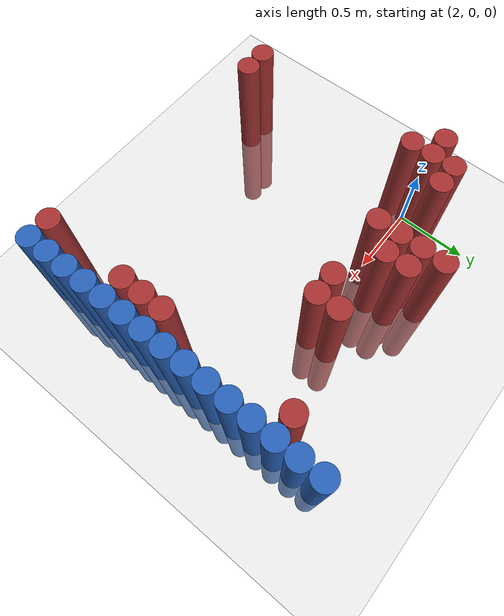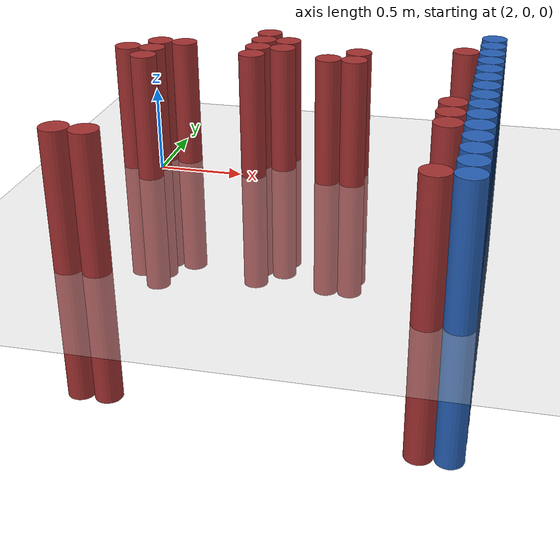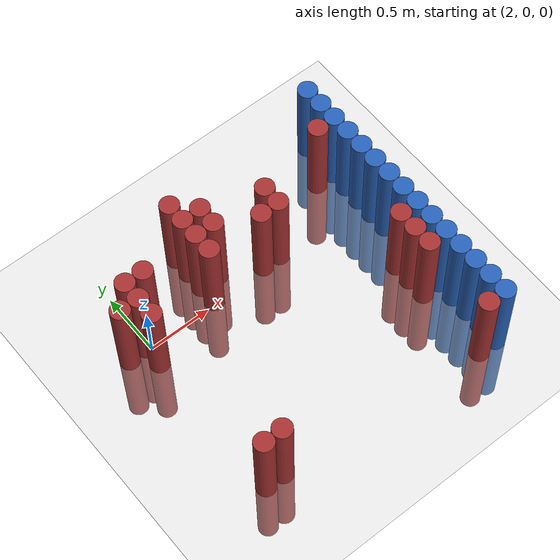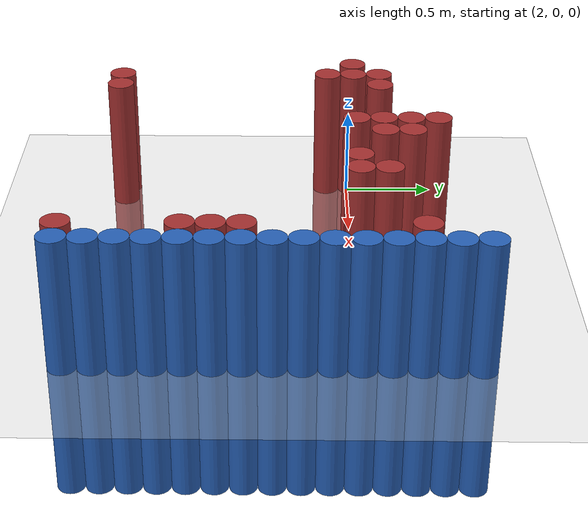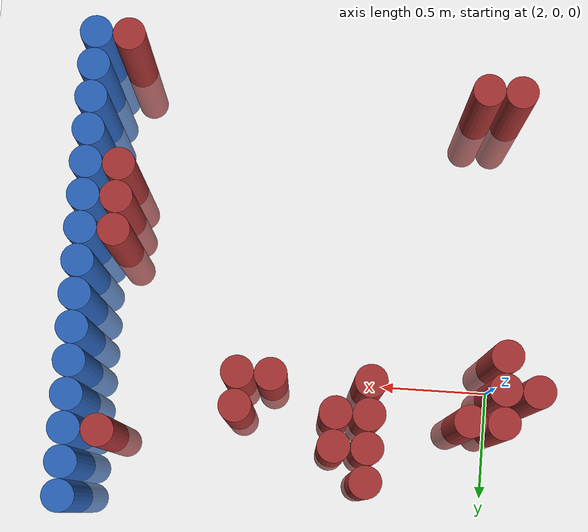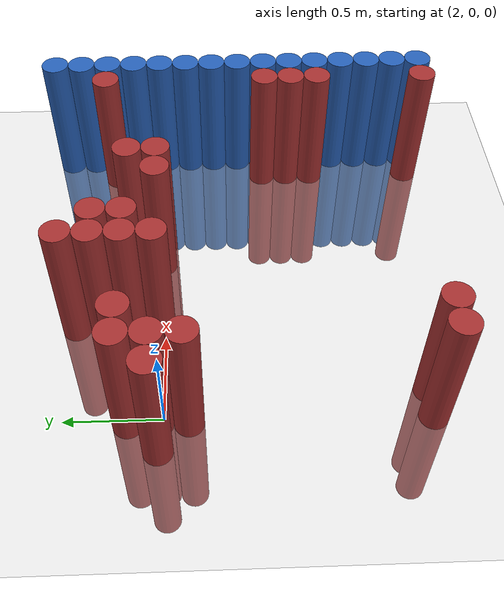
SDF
<sdf version="1.6">
 <world name="default">
  <model name="ground_plane">
   <static>1</static>
   <link name="link">
    <collision name="collision">
     <geometry><plane><normal>0 0 1</normal><size>100 100</size></plane></geometry>
     <surface><friction><ode><mu>100</mu><mu2>50</mu2></ode></friction></surface>
    </collision>
    <visual name="visual">
     <cast_shadows>0</cast_shadows>
     <geometry><plane><normal>0 0 1</normal><size>100 100</size></plane></geometry>
     <material>
      <script><uri>file://media/materials/scripts/gazebo.material</uri><name>Gazebo/Grey</name></script>
     </material>
    </visual>
   </link>
  </model>
  <model name="unit_cylinder_94">
   <static>1</static>
   <pose>3.925000 -1.475000 0.000000 0.000000 0.000000 0.000000</pose>
   <link name="link">
    <inertial>
     <mass>1</mass>
     <inertia><ixx>0.145833</ixx><ixy>0</ixy><ixz>0</ixz><iyy>0.145833</iyy><iyz>0</iyz><izz>0.125</izz></inertia>
    </inertial>
    <collision name="collision">
     <geometry><cylinder><radius>0.075000</radius><length>1.5</length></cylinder></geometry>
    </collision>
    <visual name="visual">
     <geometry><cylinder><radius>0.075000</radius><length>1.5</length></cylinder></geometry>
     <material>
      <ambient>0.152000 0.379000 0.720000 1</ambient>
      <diffuse>0.152000 0.379000 0.720000 1</diffuse>
     </material>
     <material>
      <script><name>Gazebo/Grey</name><uri>file://media/materials/scripts/gazebo.material</uri></script>
     </material>
    </visual>
   </link>
  </model>
  <model name="unit_cylinder_96">
   <static>1</static>
   <pose>3.925000 -1.325000 0.000000 0.000000 0.000000 0.000000</pose>
   <link name="link">
    <inertial>
     <mass>1</mass>
     <inertia><ixx>0.145833</ixx><ixy>0</ixy><ixz>0</ixz><iyy>0.145833</iyy><iyz>0</iyz><izz>0.125</izz></inertia>
    </inertial>
    <collision name="collision">
     <geometry><cylinder><radius>0.075000</radius><length>1.5</length></cylinder></geometry>
    </collision>
    <visual name="visual">
     <geometry><cylinder><radius>0.075000</radius><length>1.5</length></cylinder></geometry>
     <material>
      <ambient>0.152000 0.379000 0.720000 1</ambient>
      <diffuse>0.152000 0.379000 0.720000 1</diffuse>
     </material>
     <material>
      <script><name>Gazebo/Grey</name><uri>file://media/materials/scripts/gazebo.material</uri></script>
     </material>
    </visual>
   </link>
  </model>
  <model name="unit_cylinder_98">
   <static>1</static>
   <pose>3.925000 -1.175000 0.000000 0.000000 0.000000 0.000000</pose>
   <link name="link">
    <inertial>
     <mass>1</mass>
     <inertia><ixx>0.145833</ixx><ixy>0</ixy><ixz>0</ixz><iyy>0.145833</iyy><iyz>0</iyz><izz>0.125</izz></inertia>
    </inertial>
    <collision name="collision">
     <geometry><cylinder><radius>0.075000</radius><length>1.5</length></cylinder></geometry>
    </collision>
    <visual name="visual">
     <geometry><cylinder><radius>0.075000</radius><length>1.5</length></cylinder></geometry>
     <material>
      <ambient>0.152000 0.379000 0.720000 1</ambient>
      <diffuse>0.152000 0.379000 0.720000 1</diffuse>
     </material>
     <material>
      <script><name>Gazebo/Grey</name><uri>file://media/materials/scripts/gazebo.material</uri></script>
     </material>
    </visual>
   </link>
  </model>
  <model name="unit_cylinder_100">
   <static>1</static>
   <pose>3.925000 -1.025000 0.000000 0.000000 0.000000 0.000000</pose>
   <link name="link">
    <inertial>
     <mass>1</mass>
     <inertia><ixx>0.145833</ixx><ixy>0</ixy><ixz>0</ixz><iyy>0.145833</iyy><iyz>0</iyz><izz>0.125</izz></inertia>
    </inertial>
    <collision name="collision">
     <geometry><cylinder><radius>0.075000</radius><length>1.5</length></cylinder></geometry>
    </collision>
    <visual name="visual">
     <geometry><cylinder><radius>0.075000</radius><length>1.5</length></cylinder></geometry>
     <material>
      <ambient>0.152000 0.379000 0.720000 1</ambient>
      <diffuse>0.152000 0.379000 0.720000 1</diffuse>
     </material>
     <material>
      <script><name>Gazebo/Grey</name><uri>file://media/materials/scripts/gazebo.material</uri></script>
     </material>
    </visual>
   </link>
  </model>
  <model name="unit_cylinder_102">
   <static>1</static>
   <pose>3.925000 -0.875000 0.000000 0.000000 0.000000 0.000000</pose>
   <link name="link">
    <inertial>
     <mass>1</mass>
     <inertia><ixx>0.145833</ixx><ixy>0</ixy><ixz>0</ixz><iyy>0.145833</iyy><iyz>0</iyz><izz>0.125</izz></inertia>
    </inertial>
    <collision name="collision">
     <geometry><cylinder><radius>0.075000</radius><length>1.5</length></cylinder></geometry>
    </collision>
    <visual name="visual">
     <geometry><cylinder><radius>0.075000</radius><length>1.5</length></cylinder></geometry>
     <material>
      <ambient>0.152000 0.379000 0.720000 1</ambient>
      <diffuse>0.152000 0.379000 0.720000 1</diffuse>
     </material>
     <material>
      <script><name>Gazebo/Grey</name><uri>file://media/materials/scripts/gazebo.material</uri></script>
     </material>
    </visual>
   </link>
  </model>
  <model name="unit_cylinder_104">
   <static>1</static>
   <pose>3.925000 -0.725000 0.000000 0.000000 0.000000 0.000000</pose>
   <link name="link">
    <inertial>
     <mass>1</mass>
     <inertia><ixx>0.145833</ixx><ixy>0</ixy><ixz>0</ixz><iyy>0.145833</iyy><iyz>0</iyz><izz>0.125</izz></inertia>
    </inertial>
    <collision name="collision">
     <geometry><cylinder><radius>0.075000</radius><length>1.5</length></cylinder></geometry>
    </collision>
    <visual name="visual">
     <geometry><cylinder><radius>0.075000</radius><length>1.5</length></cylinder></geometry>
     <material>
      <ambient>0.152000 0.379000 0.720000 1</ambient>
      <diffuse>0.152000 0.379000 0.720000 1</diffuse>
     </material>
     <material>
      <script><name>Gazebo/Grey</name><uri>file://media/materials/scripts/gazebo.material</uri></script>
     </material>
    </visual>
   </link>
  </model>
  <model name="unit_cylinder_106">
   <static>1</static>
   <pose>3.925000 -0.575000 0.000000 0.000000 0.000000 0.000000</pose>
   <link name="link">
    <inertial>
     <mass>1</mass>
     <inertia><ixx>0.145833</ixx><ixy>0</ixy><ixz>0</ixz><iyy>0.145833</iyy><iyz>0</iyz><izz>0.125</izz></inertia>
    </inertial>
    <collision name="collision">
     <geometry><cylinder><radius>0.075000</radius><length>1.5</length></cylinder></geometry>
    </collision>
    <visual name="visual">
     <geometry><cylinder><radius>0.075000</radius><length>1.5</length></cylinder></geometry>
     <material>
      <ambient>0.152000 0.379000 0.720000 1</ambient>
      <diffuse>0.152000 0.379000 0.720000 1</diffuse>
     </material>
     <material>
      <script><name>Gazebo/Grey</name><uri>file://media/materials/scripts/gazebo.material</uri></script>
     </material>
    </visual>
   </link>
  </model>
  <model name="unit_cylinder_108">
   <static>1</static>
   <pose>3.925000 -0.425000 0.000000 0.000000 0.000000 0.000000</pose>
   <link name="link">
    <inertial>
     <mass>1</mass>
     <inertia><ixx>0.145833</ixx><ixy>0</ixy><ixz>0</ixz><iyy>0.145833</iyy><iyz>0</iyz><izz>0.125</izz></inertia>
    </inertial>
    <collision name="collision">
     <geometry><cylinder><radius>0.075000</radius><length>1.5</length></cylinder></geometry>
    </collision>
    <visual name="visual">
     <geometry><cylinder><radius>0.075000</radius><length>1.5</length></cylinder></geometry>
     <material>
      <ambient>0.152000 0.379000 0.720000 1</ambient>
      <diffuse>0.152000 0.379000 0.720000 1</diffuse>
     </material>
     <material>
      <script><name>Gazebo/Grey</name><uri>file://media/materials/scripts/gazebo.material</uri></script>
     </material>
    </visual>
   </link>
  </model>
  <model name="unit_cylinder_110">
   <static>1</static>
   <pose>3.925000 -0.275000 0.000000 0.000000 0.000000 0.000000</pose>
   <link name="link">
    <inertial>
     <mass>1</mass>
     <inertia><ixx>0.145833</ixx><ixy>0</ixy><ixz>0</ixz><iyy>0.145833</iyy><iyz>0</iyz><izz>0.125</izz></inertia>
    </inertial>
    <collision name="collision">
     <geometry><cylinder><radius>0.075000</radius><length>1.5</length></cylinder></geometry>
    </collision>
    <visual name="visual">
     <geometry><cylinder><radius>0.075000</radius><length>1.5</length></cylinder></geometry>
     <material>
      <ambient>0.152000 0.379000 0.720000 1</ambient>
      <diffuse>0.152000 0.379000 0.720000 1</diffuse>
     </material>
     <material>
      <script><name>Gazebo/Grey</name><uri>file://media/materials/scripts/gazebo.material</uri></script>
     </material>
    </visual>
   </link>
  </model>
  <model name="unit_cylinder_112">
   <static>1</static>
   <pose>3.925000 -0.125000 0.000000 0.000000 0.000000 0.000000</pose>
   <link name="link">
    <inertial>
     <mass>1</mass>
     <inertia><ixx>0.145833</ixx><ixy>0</ixy><ixz>0</ixz><iyy>0.145833</iyy><iyz>0</iyz><izz>0.125</izz></inertia>
    </inertial>
    <collision name="collision">
     <geometry><cylinder><radius>0.075000</radius><length>1.5</length></cylinder></geometry>
    </collision>
    <visual name="visual">
     <geometry><cylinder><radius>0.075000</radius><length>1.5</length></cylinder></geometry>
     <material>
      <ambient>0.152000 0.379000 0.720000 1</ambient>
      <diffuse>0.152000 0.379000 0.720000 1</diffuse>
     </material>
     <material>
      <script><name>Gazebo/Grey</name><uri>file://media/materials/scripts/gazebo.material</uri></script>
     </material>
    </visual>
   </link>
  </model>
  <model name="unit_cylinder_114">
   <static>1</static>
   <pose>3.925000 0.025000 0.000000 0.000000 0.000000 0.000000</pose>
   <link name="link">
    <inertial>
     <mass>1</mass>
     <inertia><ixx>0.145833</ixx><ixy>0</ixy><ixz>0</ixz><iyy>0.145833</iyy><iyz>0</iyz><izz>0.125</izz></inertia>
    </inertial>
    <collision name="collision">
     <geometry><cylinder><radius>0.075000</radius><length>1.5</length></cylinder></geometry>
    </collision>
    <visual name="visual">
     <geometry><cylinder><radius>0.075000</radius><length>1.5</length></cylinder></geometry>
     <material>
      <ambient>0.152000 0.379000 0.720000 1</ambient>
      <diffuse>0.152000 0.379000 0.720000 1</diffuse>
     </material>
     <material>
      <script><name>Gazebo/Grey</name><uri>file://media/materials/scripts/gazebo.material</uri></script>
     </material>
    </visual>
   </link>
  </model>
  <model name="unit_cylinder_116">
   <static>1</static>
   <pose>3.925000 0.175000 0.000000 0.000000 0.000000 0.000000</pose>
   <link name="link">
    <inertial>
     <mass>1</mass>
     <inertia><ixx>0.145833</ixx><ixy>0</ixy><ixz>0</ixz><iyy>0.145833</iyy><iyz>0</iyz><izz>0.125</izz></inertia>
    </inertial>
    <collision name="collision">
     <geometry><cylinder><radius>0.075000</radius><length>1.5</length></cylinder></geometry>
    </collision>
    <visual name="visual">
     <geometry><cylinder><radius>0.075000</radius><length>1.5</length></cylinder></geometry>
     <material>
      <ambient>0.152000 0.379000 0.720000 1</ambient>
      <diffuse>0.152000 0.379000 0.720000 1</diffuse>
     </material>
     <material>
      <script><name>Gazebo/Grey</name><uri>file://media/materials/scripts/gazebo.material</uri></script>
     </material>
    </visual>
   </link>
  </model>
  <model name="unit_cylinder_118">
   <static>1</static>
   <pose>3.925000 0.325000 0.000000 0.000000 0.000000 0.000000</pose>
   <link name="link">
    <inertial>
     <mass>1</mass>
     <inertia><ixx>0.145833</ixx><ixy>0</ixy><ixz>0</ixz><iyy>0.145833</iyy><iyz>0</iyz><izz>0.125</izz></inertia>
    </inertial>
    <collision name="collision">
     <geometry><cylinder><radius>0.075000</radius><length>1.5</length></cylinder></geometry>
    </collision>
    <visual name="visual">
     <geometry><cylinder><radius>0.075000</radius><length>1.5</length></cylinder></geometry>
     <material>
      <ambient>0.152000 0.379000 0.720000 1</ambient>
      <diffuse>0.152000 0.379000 0.720000 1</diffuse>
     </material>
     <material>
      <script><name>Gazebo/Grey</name><uri>file://media/materials/scripts/gazebo.material</uri></script>
     </material>
    </visual>
   </link>
  </model>
  <model name="unit_cylinder_120">
   <static>1</static>
   <pose>3.925000 0.475000 0.000000 0.000000 0.000000 0.000000</pose>
   <link name="link">
    <inertial>
     <mass>1</mass>
     <inertia><ixx>0.145833</ixx><ixy>0</ixy><ixz>0</ixz><iyy>0.145833</iyy><iyz>0</iyz><izz>0.125</izz></inertia>
    </inertial>
    <collision name="collision">
     <geometry><cylinder><radius>0.075000</radius><length>1.5</length></cylinder></geometry>
    </collision>
    <visual name="visual">
     <geometry><cylinder><radius>0.075000</radius><length>1.5</length></cylinder></geometry>
     <material>
      <ambient>0.152000 0.379000 0.720000 1</ambient>
      <diffuse>0.152000 0.379000 0.720000 1</diffuse>
     </material>
     <material>
      <script><name>Gazebo/Grey</name><uri>file://media/materials/scripts/gazebo.material</uri></script>
     </material>
    </visual>
   </link>
  </model>
  <model name="unit_cylinder_122">
   <static>1</static>
   <pose>3.925000 0.625000 0.000000 0.000000 0.000000 0.000000</pose>
   <link name="link">
    <inertial>
     <mass>1</mass>
     <inertia><ixx>0.145833</ixx><ixy>0</ixy><ixz>0</ixz><iyy>0.145833</iyy><iyz>0</iyz><izz>0.125</izz></inertia>
    </inertial>
    <collision name="collision">
     <geometry><cylinder><radius>0.075000</radius><length>1.5</length></cylinder></geometry>
    </collision>
    <visual name="visual">
     <geometry><cylinder><radius>0.075000</radius><length>1.5</length></cylinder></geometry>
     <material>
      <ambient>0.152000 0.379000 0.720000 1</ambient>
      <diffuse>0.152000 0.379000 0.720000 1</diffuse>
     </material>
     <material>
      <script><name>Gazebo/Grey</name><uri>file://media/materials/scripts/gazebo.material</uri></script>
     </material>
    </visual>
   </link>
  </model>
  <model name="unit_cylinder_428">
   <static>1</static>
   <pose>1.825000 0.025000 0.000000 0.000000 0.000000 0.000000</pose>
   <link name="link">
    <inertial>
     <mass>1</mass>
     <inertia><ixx>0.145833</ixx><ixy>0</ixy><ixz>0</ixz><iyy>0.145833</iyy><iyz>0</iyz><izz>0.125</izz></inertia>
    </inertial>
    <collision name="collision">
     <geometry><cylinder><radius>0.075000</radius><length>1.5</length></cylinder></geometry>
    </collision>
    <visual name="visual">
     <geometry><cylinder><radius>0.075000</radius><length>1.5</length></cylinder></geometry>
     <material>
      <ambient>0.648000 0.192000 0.192000 1</ambient>
      <diffuse>0.648000 0.192000 0.192000 1</diffuse>
     </material>
     <material>
      <script><name>Gazebo/Grey</name><uri>file://media/materials/scripts/gazebo.material</uri></script>
     </material>
    </visual>
   </link>
  </model>
  <model name="unit_cylinder_434">
   <static>1</static>
   <pose>1.975000 -1.325000 0.000000 0.000000 0.000000 0.000000</pose>
   <link name="link">
    <inertial>
     <mass>1</mass>
     <inertia><ixx>0.145833</ixx><ixy>0</ixy><ixz>0</ixz><iyy>0.145833</iyy><iyz>0</iyz><izz>0.125</izz></inertia>
    </inertial>
    <collision name="collision">
     <geometry><cylinder><radius>0.075000</radius><length>1.5</length></cylinder></geometry>
    </collision>
    <visual name="visual">
     <geometry><cylinder><radius>0.075000</radius><length>1.5</length></cylinder></geometry>
     <material>
      <ambient>0.648000 0.192000 0.192000 1</ambient>
      <diffuse>0.648000 0.192000 0.192000 1</diffuse>
     </material>
     <material>
      <script><name>Gazebo/Grey</name><uri>file://media/materials/scripts/gazebo.material</uri></script>
     </material>
    </visual>
   </link>
  </model>
  <model name="unit_cylinder_435">
   <static>1</static>
   <pose>1.975000 -0.125000 0.000000 0.000000 0.000000 0.000000</pose>
   <link name="link">
    <inertial>
     <mass>1</mass>
     <inertia><ixx>0.145833</ixx><ixy>0</ixy><ixz>0</ixz><iyy>0.145833</iyy><iyz>0</iyz><izz>0.125</izz></inertia>
    </inertial>
    <collision name="collision">
     <geometry><cylinder><radius>0.075000</radius><length>1.5</length></cylinder></geometry>
    </collision>
    <visual name="visual">
     <geometry><cylinder><radius>0.075000</radius><length>1.5</length></cylinder></geometry>
     <material>
      <ambient>0.648000 0.192000 0.192000 1</ambient>
      <diffuse>0.648000 0.192000 0.192000 1</diffuse>
     </material>
     <material>
      <script><name>Gazebo/Grey</name><uri>file://media/materials/scripts/gazebo.material</uri></script>
     </material>
    </visual>
   </link>
  </model>
  <model name="unit_cylinder_436">
   <static>1</static>
   <pose>1.975000 0.025000 0.000000 0.000000 0.000000 0.000000</pose>
   <link name="link">
    <inertial>
     <mass>1</mass>
     <inertia><ixx>0.145833</ixx><ixy>0</ixy><ixz>0</ixz><iyy>0.145833</iyy><iyz>0</iyz><izz>0.125</izz></inertia>
    </inertial>
    <collision name="collision">
     <geometry><cylinder><radius>0.075000</radius><length>1.5</length></cylinder></geometry>
    </collision>
    <visual name="visual">
     <geometry><cylinder><radius>0.075000</radius><length>1.5</length></cylinder></geometry>
     <material>
      <ambient>0.648000 0.192000 0.192000 1</ambient>
      <diffuse>0.648000 0.192000 0.192000 1</diffuse>
     </material>
     <material>
      <script><name>Gazebo/Grey</name><uri>file://media/materials/scripts/gazebo.material</uri></script>
     </material>
    </visual>
   </link>
  </model>
  <model name="unit_cylinder_437">
   <static>1</static>
   <pose>1.975000 0.175000 0.000000 0.000000 0.000000 0.000000</pose>
   <link name="link">
    <inertial>
     <mass>1</mass>
     <inertia><ixx>0.145833</ixx><ixy>0</ixy><ixz>0</ixz><iyy>0.145833</iyy><iyz>0</iyz><izz>0.125</izz></inertia>
    </inertial>
    <collision name="collision">
     <geometry><cylinder><radius>0.075000</radius><length>1.5</length></cylinder></geometry>
    </collision>
    <visual name="visual">
     <geometry><cylinder><radius>0.075000</radius><length>1.5</length></cylinder></geometry>
     <material>
      <ambient>0.648000 0.192000 0.192000 1</ambient>
      <diffuse>0.648000 0.192000 0.192000 1</diffuse>
     </material>
     <material>
      <script><name>Gazebo/Grey</name><uri>file://media/materials/scripts/gazebo.material</uri></script>
     </material>
    </visual>
   </link>
  </model>
  <model name="unit_cylinder_444">
   <static>1</static>
   <pose>2.125000 -1.325000 0.000000 0.000000 0.000000 0.000000</pose>
   <link name="link">
    <inertial>
     <mass>1</mass>
     <inertia><ixx>0.145833</ixx><ixy>0</ixy><ixz>0</ixz><iyy>0.145833</iyy><iyz>0</iyz><izz>0.125</izz></inertia>
    </inertial>
    <collision name="collision">
     <geometry><cylinder><radius>0.075000</radius><length>1.5</length></cylinder></geometry>
    </collision>
    <visual name="visual">
     <geometry><cylinder><radius>0.075000</radius><length>1.5</length></cylinder></geometry>
     <material>
      <ambient>0.648000 0.192000 0.192000 1</ambient>
      <diffuse>0.648000 0.192000 0.192000 1</diffuse>
     </material>
     <material>
      <script><name>Gazebo/Grey</name><uri>file://media/materials/scripts/gazebo.material</uri></script>
     </material>
    </visual>
   </link>
  </model>
  <model name="unit_cylinder_445">
   <static>1</static>
   <pose>2.125000 0.175000 0.000000 0.000000 0.000000 0.000000</pose>
   <link name="link">
    <inertial>
     <mass>1</mass>
     <inertia><ixx>0.145833</ixx><ixy>0</ixy><ixz>0</ixz><iyy>0.145833</iyy><iyz>0</iyz><izz>0.125</izz></inertia>
    </inertial>
    <collision name="collision">
     <geometry><cylinder><radius>0.075000</radius><length>1.5</length></cylinder></geometry>
    </collision>
    <visual name="visual">
     <geometry><cylinder><radius>0.075000</radius><length>1.5</length></cylinder></geometry>
     <material>
      <ambient>0.648000 0.192000 0.192000 1</ambient>
      <diffuse>0.648000 0.192000 0.192000 1</diffuse>
     </material>
     <material>
      <script><name>Gazebo/Grey</name><uri>file://media/materials/scripts/gazebo.material</uri></script>
     </material>
    </visual>
   </link>
  </model>
  <model name="unit_cylinder_449">
   <static>1</static>
   <pose>2.575000 0.025000 0.000000 0.000000 0.000000 0.000000</pose>
   <link name="link">
    <inertial>
     <mass>1</mass>
     <inertia><ixx>0.145833</ixx><ixy>0</ixy><ixz>0</ixz><iyy>0.145833</iyy><iyz>0</iyz><izz>0.125</izz></inertia>
    </inertial>
    <collision name="collision">
     <geometry><cylinder><radius>0.075000</radius><length>1.5</length></cylinder></geometry>
    </collision>
    <visual name="visual">
     <geometry><cylinder><radius>0.075000</radius><length>1.5</length></cylinder></geometry>
     <material>
      <ambient>0.648000 0.192000 0.192000 1</ambient>
      <diffuse>0.648000 0.192000 0.192000 1</diffuse>
     </material>
     <material>
      <script><name>Gazebo/Grey</name><uri>file://media/materials/scripts/gazebo.material</uri></script>
     </material>
    </visual>
   </link>
  </model>
  <model name="unit_cylinder_450">
   <static>1</static>
   <pose>2.575000 0.175000 0.000000 0.000000 0.000000 0.000000</pose>
   <link name="link">
    <inertial>
     <mass>1</mass>
     <inertia><ixx>0.145833</ixx><ixy>0</ixy><ixz>0</ixz><iyy>0.145833</iyy><iyz>0</iyz><izz>0.125</izz></inertia>
    </inertial>
    <collision name="collision">
     <geometry><cylinder><radius>0.075000</radius><length>1.5</length></cylinder></geometry>
    </collision>
    <visual name="visual">
     <geometry><cylinder><radius>0.075000</radius><length>1.5</length></cylinder></geometry>
     <material>
      <ambient>0.648000 0.192000 0.192000 1</ambient>
      <diffuse>0.648000 0.192000 0.192000 1</diffuse>
     </material>
     <material>
      <script><name>Gazebo/Grey</name><uri>file://media/materials/scripts/gazebo.material</uri></script>
     </material>
    </visual>
   </link>
  </model>
  <model name="unit_cylinder_451">
   <static>1</static>
   <pose>2.575000 0.325000 0.000000 0.000000 0.000000 0.000000</pose>
   <link name="link">
    <inertial>
     <mass>1</mass>
     <inertia><ixx>0.145833</ixx><ixy>0</ixy><ixz>0</ixz><iyy>0.145833</iyy><iyz>0</iyz><izz>0.125</izz></inertia>
    </inertial>
    <collision name="collision">
     <geometry><cylinder><radius>0.075000</radius><length>1.5</length></cylinder></geometry>
    </collision>
    <visual name="visual">
     <geometry><cylinder><radius>0.075000</radius><length>1.5</length></cylinder></geometry>
     <material>
      <ambient>0.648000 0.192000 0.192000 1</ambient>
      <diffuse>0.648000 0.192000 0.192000 1</diffuse>
     </material>
     <material>
      <script><name>Gazebo/Grey</name><uri>file://media/materials/scripts/gazebo.material</uri></script>
     </material>
    </visual>
   </link>
  </model>
  <model name="unit_cylinder_452">
   <static>1</static>
   <pose>2.575000 0.475000 0.000000 0.000000 0.000000 0.000000</pose>
   <link name="link">
    <inertial>
     <mass>1</mass>
     <inertia><ixx>0.145833</ixx><ixy>0</ixy><ixz>0</ixz><iyy>0.145833</iyy><iyz>0</iyz><izz>0.125</izz></inertia>
    </inertial>
    <collision name="collision">
     <geometry><cylinder><radius>0.075000</radius><length>1.5</length></cylinder></geometry>
    </collision>
    <visual name="visual">
     <geometry><cylinder><radius>0.075000</radius><length>1.5</length></cylinder></geometry>
     <material>
      <ambient>0.648000 0.192000 0.192000 1</ambient>
      <diffuse>0.648000 0.192000 0.192000 1</diffuse>
     </material>
     <material>
      <script><name>Gazebo/Grey</name><uri>file://media/materials/scripts/gazebo.material</uri></script>
     </material>
    </visual>
   </link>
  </model>
  <model name="unit_cylinder_456">
   <static>1</static>
   <pose>2.725000 0.175000 0.000000 0.000000 0.000000 0.000000</pose>
   <link name="link">
    <inertial>
     <mass>1</mass>
     <inertia><ixx>0.145833</ixx><ixy>0</ixy><ixz>0</ixz><iyy>0.145833</iyy><iyz>0</iyz><izz>0.125</izz></inertia>
    </inertial>
    <collision name="collision">
     <geometry><cylinder><radius>0.075000</radius><length>1.5</length></cylinder></geometry>
    </collision>
    <visual name="visual">
     <geometry><cylinder><radius>0.075000</radius><length>1.5</length></cylinder></geometry>
     <material>
      <ambient>0.648000 0.192000 0.192000 1</ambient>
      <diffuse>0.648000 0.192000 0.192000 1</diffuse>
     </material>
     <material>
      <script><name>Gazebo/Grey</name><uri>file://media/materials/scripts/gazebo.material</uri></script>
     </material>
    </visual>
   </link>
  </model>
  <model name="unit_cylinder_457">
   <static>1</static>
   <pose>2.725000 0.325000 0.000000 0.000000 0.000000 0.000000</pose>
   <link name="link">
    <inertial>
     <mass>1</mass>
     <inertia><ixx>0.145833</ixx><ixy>0</ixy><ixz>0</ixz><iyy>0.145833</iyy><iyz>0</iyz><izz>0.125</izz></inertia>
    </inertial>
    <collision name="collision">
     <geometry><cylinder><radius>0.075000</radius><length>1.5</length></cylinder></geometry>
    </collision>
    <visual name="visual">
     <geometry><cylinder><radius>0.075000</radius><length>1.5</length></cylinder></geometry>
     <material>
      <ambient>0.648000 0.192000 0.192000 1</ambient>
      <diffuse>0.648000 0.192000 0.192000 1</diffuse>
     </material>
     <material>
      <script><name>Gazebo/Grey</name><uri>file://media/materials/scripts/gazebo.material</uri></script>
     </material>
    </visual>
   </link>
  </model>
  <model name="unit_cylinder_466">
   <static>1</static>
   <pose>3.025000 0.025000 0.000000 0.000000 0.000000 0.000000</pose>
   <link name="link">
    <inertial>
     <mass>1</mass>
     <inertia><ixx>0.145833</ixx><ixy>0</ixy><ixz>0</ixz><iyy>0.145833</iyy><iyz>0</iyz><izz>0.125</izz></inertia>
    </inertial>
    <collision name="collision">
     <geometry><cylinder><radius>0.075000</radius><length>1.5</length></cylinder></geometry>
    </collision>
    <visual name="visual">
     <geometry><cylinder><radius>0.075000</radius><length>1.5</length></cylinder></geometry>
     <material>
      <ambient>0.648000 0.192000 0.192000 1</ambient>
      <diffuse>0.648000 0.192000 0.192000 1</diffuse>
     </material>
     <material>
      <script><name>Gazebo/Grey</name><uri>file://media/materials/scripts/gazebo.material</uri></script>
     </material>
    </visual>
   </link>
  </model>
  <model name="unit_cylinder_476">
   <static>1</static>
   <pose>3.175000 0.025000 0.000000 0.000000 0.000000 0.000000</pose>
   <link name="link">
    <inertial>
     <mass>1</mass>
     <inertia><ixx>0.145833</ixx><ixy>0</ixy><ixz>0</ixz><iyy>0.145833</iyy><iyz>0</iyz><izz>0.125</izz></inertia>
    </inertial>
    <collision name="collision">
     <geometry><cylinder><radius>0.075000</radius><length>1.5</length></cylinder></geometry>
    </collision>
    <visual name="visual">
     <geometry><cylinder><radius>0.075000</radius><length>1.5</length></cylinder></geometry>
     <material>
      <ambient>0.648000 0.192000 0.192000 1</ambient>
      <diffuse>0.648000 0.192000 0.192000 1</diffuse>
     </material>
     <material>
      <script><name>Gazebo/Grey</name><uri>file://media/materials/scripts/gazebo.material</uri></script>
     </material>
    </visual>
   </link>
  </model>
  <model name="unit_cylinder_477">
   <static>1</static>
   <pose>3.175000 0.175000 0.000000 0.000000 0.000000 0.000000</pose>
   <link name="link">
    <inertial>
     <mass>1</mass>
     <inertia><ixx>0.145833</ixx><ixy>0</ixy><ixz>0</ixz><iyy>0.145833</iyy><iyz>0</iyz><izz>0.125</izz></inertia>
    </inertial>
    <collision name="collision">
     <geometry><cylinder><radius>0.075000</radius><length>1.5</length></cylinder></geometry>
    </collision>
    <visual name="visual">
     <geometry><cylinder><radius>0.075000</radius><length>1.5</length></cylinder></geometry>
     <material>
      <ambient>0.648000 0.192000 0.192000 1</ambient>
      <diffuse>0.648000 0.192000 0.192000 1</diffuse>
     </material>
     <material>
      <script><name>Gazebo/Grey</name><uri>file://media/materials/scripts/gazebo.material</uri></script>
     </material>
    </visual>
   </link>
  </model>
  <model name="unit_cylinder_487">
   <static>1</static>
   <pose>3.775000 -1.475000 0.000000 0.000000 0.000000 0.000000</pose>
   <link name="link">
    <inertial>
     <mass>1</mass>
     <inertia><ixx>0.145833</ixx><ixy>0</ixy><ixz>0</ixz><iyy>0.145833</iyy><iyz>0</iyz><izz>0.125</izz></inertia>
    </inertial>
    <collision name="collision">
     <geometry><cylinder><radius>0.075000</radius><length>1.5</length></cylinder></geometry>
    </collision>
    <visual name="visual">
     <geometry><cylinder><radius>0.075000</radius><length>1.5</length></cylinder></geometry>
     <material>
      <ambient>0.648000 0.192000 0.192000 1</ambient>
      <diffuse>0.648000 0.192000 0.192000 1</diffuse>
     </material>
     <material>
      <script><name>Gazebo/Grey</name><uri>file://media/materials/scripts/gazebo.material</uri></script>
     </material>
    </visual>
   </link>
  </model>
  <model name="unit_cylinder_488">
   <static>1</static>
   <pose>3.775000 -0.875000 0.000000 0.000000 0.000000 0.000000</pose>
   <link name="link">
    <inertial>
     <mass>1</mass>
     <inertia><ixx>0.145833</ixx><ixy>0</ixy><ixz>0</ixz><iyy>0.145833</iyy><iyz>0</iyz><izz>0.125</izz></inertia>
    </inertial>
    <collision name="collision">
     <geometry><cylinder><radius>0.075000</radius><length>1.5</length></cylinder></geometry>
    </collision>
    <visual name="visual">
     <geometry><cylinder><radius>0.075000</radius><length>1.5</length></cylinder></geometry>
     <material>
      <ambient>0.648000 0.192000 0.192000 1</ambient>
      <diffuse>0.648000 0.192000 0.192000 1</diffuse>
     </material>
     <material>
      <script><name>Gazebo/Grey</name><uri>file://media/materials/scripts/gazebo.material</uri></script>
     </material>
    </visual>
   </link>
  </model>
  <model name="unit_cylinder_489">
   <static>1</static>
   <pose>3.775000 -0.725000 0.000000 0.000000 0.000000 0.000000</pose>
   <link name="link">
    <inertial>
     <mass>1</mass>
     <inertia><ixx>0.145833</ixx><ixy>0</ixy><ixz>0</ixz><iyy>0.145833</iyy><iyz>0</iyz><izz>0.125</izz></inertia>
    </inertial>
    <collision name="collision">
     <geometry><cylinder><radius>0.075000</radius><length>1.5</length></cylinder></geometry>
    </collision>
    <visual name="visual">
     <geometry><cylinder><radius>0.075000</radius><length>1.5</length></cylinder></geometry>
     <material>
      <ambient>0.648000 0.192000 0.192000 1</ambient>
      <diffuse>0.648000 0.192000 0.192000 1</diffuse>
     </material>
     <material>
      <script><name>Gazebo/Grey</name><uri>file://media/materials/scripts/gazebo.material</uri></script>
     </material>
    </visual>
   </link>
  </model>
  <model name="unit_cylinder_490">
   <static>1</static>
   <pose>3.775000 -0.575000 0.000000 0.000000 0.000000 0.000000</pose>
   <link name="link">
    <inertial>
     <mass>1</mass>
     <inertia><ixx>0.145833</ixx><ixy>0</ixy><ixz>0</ixz><iyy>0.145833</iyy><iyz>0</iyz><izz>0.125</izz></inertia>
    </inertial>
    <collision name="collision">
     <geometry><cylinder><radius>0.075000</radius><length>1.5</length></cylinder></geometry>
    </collision>
    <visual name="visual">
     <geometry><cylinder><radius>0.075000</radius><length>1.5</length></cylinder></geometry>
     <material>
      <ambient>0.648000 0.192000 0.192000 1</ambient>
      <diffuse>0.648000 0.192000 0.192000 1</diffuse>
     </material>
     <material>
      <script><name>Gazebo/Grey</name><uri>file://media/materials/scripts/gazebo.material</uri></script>
     </material>
    </visual>
   </link>
  </model>
  <model name="unit_cylinder_491">
   <static>1</static>
   <pose>3.775000 0.325000 0.000000 0.000000 0.000000 0.000000</pose>
   <link name="link">
    <inertial>
     <mass>1</mass>
     <inertia><ixx>0.145833</ixx><ixy>0</ixy><ixz>0</ixz><iyy>0.145833</iyy><iyz>0</iyz><izz>0.125</izz></inertia>
    </inertial>
    <collision name="collision">
     <geometry><cylinder><radius>0.075000</radius><length>1.5</length></cylinder></geometry>
    </collision>
    <visual name="visual">
     <geometry><cylinder><radius>0.075000</radius><length>1.5</length></cylinder></geometry>
     <material>
      <ambient>0.648000 0.192000 0.192000 1</ambient>
      <diffuse>0.648000 0.192000 0.192000 1</diffuse>
     </material>
     <material>
      <script><name>Gazebo/Grey</name><uri>file://media/materials/scripts/gazebo.material</uri></script>
     </material>
    </visual>
   </link>
  </model>
  <model name="unit_cylinder_511">
   <static>1</static>
   <pose>3.925000 -1.475000 0.000000 0.000000 0.000000 0.000000</pose>
   <link name="link">
    <inertial>
     <mass>1</mass>
     <inertia><ixx>0.145833</ixx><ixy>0</ixy><ixz>0</ixz><iyy>0.145833</iyy><iyz>0</iyz><izz>0.125</izz></inertia>
    </inertial>
    <collision name="collision">
     <geometry><cylinder><radius>0.075000</radius><length>1.5</length></cylinder></geometry>
    </collision>
    <visual name="visual">
     <geometry><cylinder><radius>0.075000</radius><length>1.5</length></cylinder></geometry>
     <material>
      <ambient>0.152000 0.379000 0.720000 1</ambient>
      <diffuse>0.152000 0.379000 0.720000 1</diffuse>
     </material>
     <material>
      <script><name>Gazebo/Grey</name><uri>file://media/materials/scripts/gazebo.material</uri></script>
     </material>
    </visual>
   </link>
  </model>
  <model name="unit_cylinder_512">
   <static>1</static>
   <pose>3.925000 -1.325000 0.000000 0.000000 0.000000 0.000000</pose>
   <link name="link">
    <inertial>
     <mass>1</mass>
     <inertia><ixx>0.145833</ixx><ixy>0</ixy><ixz>0</ixz><iyy>0.145833</iyy><iyz>0</iyz><izz>0.125</izz></inertia>
    </inertial>
    <collision name="collision">
     <geometry><cylinder><radius>0.075000</radius><length>1.5</length></cylinder></geometry>
    </collision>
    <visual name="visual">
     <geometry><cylinder><radius>0.075000</radius><length>1.5</length></cylinder></geometry>
     <material>
      <ambient>0.152000 0.379000 0.720000 1</ambient>
      <diffuse>0.152000 0.379000 0.720000 1</diffuse>
     </material>
     <material>
      <script><name>Gazebo/Grey</name><uri>file://media/materials/scripts/gazebo.material</uri></script>
     </material>
    </visual>
   </link>
  </model>
  <model name="unit_cylinder_513">
   <static>1</static>
   <pose>3.925000 -1.175000 0.000000 0.000000 0.000000 0.000000</pose>
   <link name="link">
    <inertial>
     <mass>1</mass>
     <inertia><ixx>0.145833</ixx><ixy>0</ixy><ixz>0</ixz><iyy>0.145833</iyy><iyz>0</iyz><izz>0.125</izz></inertia>
    </inertial>
    <collision name="collision">
     <geometry><cylinder><radius>0.075000</radius><length>1.5</length></cylinder></geometry>
    </collision>
    <visual name="visual">
     <geometry><cylinder><radius>0.075000</radius><length>1.5</length></cylinder></geometry>
     <material>
      <ambient>0.152000 0.379000 0.720000 1</ambient>
      <diffuse>0.152000 0.379000 0.720000 1</diffuse>
     </material>
     <material>
      <script><name>Gazebo/Grey</name><uri>file://media/materials/scripts/gazebo.material</uri></script>
     </material>
    </visual>
   </link>
  </model>
  <model name="unit_cylinder_514">
   <static>1</static>
   <pose>3.925000 -1.025000 0.000000 0.000000 0.000000 0.000000</pose>
   <link name="link">
    <inertial>
     <mass>1</mass>
     <inertia><ixx>0.145833</ixx><ixy>0</ixy><ixz>0</ixz><iyy>0.145833</iyy><iyz>0</iyz><izz>0.125</izz></inertia>
    </inertial>
    <collision name="collision">
     <geometry><cylinder><radius>0.075000</radius><length>1.5</length></cylinder></geometry>
    </collision>
    <visual name="visual">
     <geometry><cylinder><radius>0.075000</radius><length>1.5</length></cylinder></geometry>
     <material>
      <ambient>0.152000 0.379000 0.720000 1</ambient>
      <diffuse>0.152000 0.379000 0.720000 1</diffuse>
     </material>
     <material>
      <script><name>Gazebo/Grey</name><uri>file://media/materials/scripts/gazebo.material</uri></script>
     </material>
    </visual>
   </link>
  </model>
  <model name="unit_cylinder_515">
   <static>1</static>
   <pose>3.925000 -0.875000 0.000000 0.000000 0.000000 0.000000</pose>
   <link name="link">
    <inertial>
     <mass>1</mass>
     <inertia><ixx>0.145833</ixx><ixy>0</ixy><ixz>0</ixz><iyy>0.145833</iyy><iyz>0</iyz><izz>0.125</izz></inertia>
    </inertial>
    <collision name="collision">
     <geometry><cylinder><radius>0.075000</radius><length>1.5</length></cylinder></geometry>
    </collision>
    <visual name="visual">
     <geometry><cylinder><radius>0.075000</radius><length>1.5</length></cylinder></geometry>
     <material>
      <ambient>0.152000 0.379000 0.720000 1</ambient>
      <diffuse>0.152000 0.379000 0.720000 1</diffuse>
     </material>
     <material>
      <script><name>Gazebo/Grey</name><uri>file://media/materials/scripts/gazebo.material</uri></script>
     </material>
    </visual>
   </link>
  </model>
  <model name="unit_cylinder_516">
   <static>1</static>
   <pose>3.925000 -0.725000 0.000000 0.000000 0.000000 0.000000</pose>
   <link name="link">
    <inertial>
     <mass>1</mass>
     <inertia><ixx>0.145833</ixx><ixy>0</ixy><ixz>0</ixz><iyy>0.145833</iyy><iyz>0</iyz><izz>0.125</izz></inertia>
    </inertial>
    <collision name="collision">
     <geometry><cylinder><radius>0.075000</radius><length>1.5</length></cylinder></geometry>
    </collision>
    <visual name="visual">
     <geometry><cylinder><radius>0.075000</radius><length>1.5</length></cylinder></geometry>
     <material>
      <ambient>0.152000 0.379000 0.720000 1</ambient>
      <diffuse>0.152000 0.379000 0.720000 1</diffuse>
     </material>
     <material>
      <script><name>Gazebo/Grey</name><uri>file://media/materials/scripts/gazebo.material</uri></script>
     </material>
    </visual>
   </link>
  </model>
  <model name="unit_cylinder_517">
   <static>1</static>
   <pose>3.925000 -0.575000 0.000000 0.000000 0.000000 0.000000</pose>
   <link name="link">
    <inertial>
     <mass>1</mass>
     <inertia><ixx>0.145833</ixx><ixy>0</ixy><ixz>0</ixz><iyy>0.145833</iyy><iyz>0</iyz><izz>0.125</izz></inertia>
    </inertial>
    <collision name="collision">
     <geometry><cylinder><radius>0.075000</radius><length>1.5</length></cylinder></geometry>
    </collision>
    <visual name="visual">
     <geometry><cylinder><radius>0.075000</radius><length>1.5</length></cylinder></geometry>
     <material>
      <ambient>0.152000 0.379000 0.720000 1</ambient>
      <diffuse>0.152000 0.379000 0.720000 1</diffuse>
     </material>
     <material>
      <script><name>Gazebo/Grey</name><uri>file://media/materials/scripts/gazebo.material</uri></script>
     </material>
    </visual>
   </link>
  </model>
  <model name="unit_cylinder_518">
   <static>1</static>
   <pose>3.925000 -0.425000 0.000000 0.000000 0.000000 0.000000</pose>
   <link name="link">
    <inertial>
     <mass>1</mass>
     <inertia><ixx>0.145833</ixx><ixy>0</ixy><ixz>0</ixz><iyy>0.145833</iyy><iyz>0</iyz><izz>0.125</izz></inertia>
    </inertial>
    <collision name="collision">
     <geometry><cylinder><radius>0.075000</radius><length>1.5</length></cylinder></geometry>
    </collision>
    <visual name="visual">
     <geometry><cylinder><radius>0.075000</radius><length>1.5</length></cylinder></geometry>
     <material>
      <ambient>0.152000 0.379000 0.720000 1</ambient>
      <diffuse>0.152000 0.379000 0.720000 1</diffuse>
     </material>
     <material>
      <script><name>Gazebo/Grey</name><uri>file://media/materials/scripts/gazebo.material</uri></script>
     </material>
    </visual>
   </link>
  </model>
  <model name="unit_cylinder_519">
   <static>1</static>
   <pose>3.925000 -0.275000 0.000000 0.000000 0.000000 0.000000</pose>
   <link name="link">
    <inertial>
     <mass>1</mass>
     <inertia><ixx>0.145833</ixx><ixy>0</ixy><ixz>0</ixz><iyy>0.145833</iyy><iyz>0</iyz><izz>0.125</izz></inertia>
    </inertial>
    <collision name="collision">
     <geometry><cylinder><radius>0.075000</radius><length>1.5</length></cylinder></geometry>
    </collision>
    <visual name="visual">
     <geometry><cylinder><radius>0.075000</radius><length>1.5</length></cylinder></geometry>
     <material>
      <ambient>0.152000 0.379000 0.720000 1</ambient>
      <diffuse>0.152000 0.379000 0.720000 1</diffuse>
     </material>
     <material>
      <script><name>Gazebo/Grey</name><uri>file://media/materials/scripts/gazebo.material</uri></script>
     </material>
    </visual>
   </link>
  </model>
  <model name="unit_cylinder_520">
   <static>1</static>
   <pose>3.925000 -0.125000 0.000000 0.000000 0.000000 0.000000</pose>
   <link name="link">
    <inertial>
     <mass>1</mass>
     <inertia><ixx>0.145833</ixx><ixy>0</ixy><ixz>0</ixz><iyy>0.145833</iyy><iyz>0</iyz><izz>0.125</izz></inertia>
    </inertial>
    <collision name="collision">
     <geometry><cylinder><radius>0.075000</radius><length>1.5</length></cylinder></geometry>
    </collision>
    <visual name="visual">
     <geometry><cylinder><radius>0.075000</radius><length>1.5</length></cylinder></geometry>
     <material>
      <ambient>0.152000 0.379000 0.720000 1</ambient>
      <diffuse>0.152000 0.379000 0.720000 1</diffuse>
     </material>
     <material>
      <script><name>Gazebo/Grey</name><uri>file://media/materials/scripts/gazebo.material</uri></script>
     </material>
    </visual>
   </link>
  </model>
  <model name="unit_cylinder_521">
   <static>1</static>
   <pose>3.925000 0.025000 0.000000 0.000000 0.000000 0.000000</pose>
   <link name="link">
    <inertial>
     <mass>1</mass>
     <inertia><ixx>0.145833</ixx><ixy>0</ixy><ixz>0</ixz><iyy>0.145833</iyy><iyz>0</iyz><izz>0.125</izz></inertia>
    </inertial>
    <collision name="collision">
     <geometry><cylinder><radius>0.075000</radius><length>1.5</length></cylinder></geometry>
    </collision>
    <visual name="visual">
     <geometry><cylinder><radius>0.075000</radius><length>1.5</length></cylinder></geometry>
     <material>
      <ambient>0.152000 0.379000 0.720000 1</ambient>
      <diffuse>0.152000 0.379000 0.720000 1</diffuse>
     </material>
     <material>
      <script><name>Gazebo/Grey</name><uri>file://media/materials/scripts/gazebo.material</uri></script>
     </material>
    </visual>
   </link>
  </model>
  <model name="unit_cylinder_522">
   <static>1</static>
   <pose>3.925000 0.175000 0.000000 0.000000 0.000000 0.000000</pose>
   <link name="link">
    <inertial>
     <mass>1</mass>
     <inertia><ixx>0.145833</ixx><ixy>0</ixy><ixz>0</ixz><iyy>0.145833</iyy><iyz>0</iyz><izz>0.125</izz></inertia>
    </inertial>
    <collision name="collision">
     <geometry><cylinder><radius>0.075000</radius><length>1.5</length></cylinder></geometry>
    </collision>
    <visual name="visual">
     <geometry><cylinder><radius>0.075000</radius><length>1.5</length></cylinder></geometry>
     <material>
      <ambient>0.152000 0.379000 0.720000 1</ambient>
      <diffuse>0.152000 0.379000 0.720000 1</diffuse>
     </material>
     <material>
      <script><name>Gazebo/Grey</name><uri>file://media/materials/scripts/gazebo.material</uri></script>
     </material>
    </visual>
   </link>
  </model>
  <model name="unit_cylinder_523">
   <static>1</static>
   <pose>3.925000 0.325000 0.000000 0.000000 0.000000 0.000000</pose>
   <link name="link">
    <inertial>
     <mass>1</mass>
     <inertia><ixx>0.145833</ixx><ixy>0</ixy><ixz>0</ixz><iyy>0.145833</iyy><iyz>0</iyz><izz>0.125</izz></inertia>
    </inertial>
    <collision name="collision">
     <geometry><cylinder><radius>0.075000</radius><length>1.5</length></cylinder></geometry>
    </collision>
    <visual name="visual">
     <geometry><cylinder><radius>0.075000</radius><length>1.5</length></cylinder></geometry>
     <material>
      <ambient>0.152000 0.379000 0.720000 1</ambient>
      <diffuse>0.152000 0.379000 0.720000 1</diffuse>
     </material>
     <material>
      <script><name>Gazebo/Grey</name><uri>file://media/materials/scripts/gazebo.material</uri></script>
     </material>
    </visual>
   </link>
  </model>
  <model name="unit_cylinder_524">
   <static>1</static>
   <pose>3.925000 0.475000 0.000000 0.000000 0.000000 0.000000</pose>
   <link name="link">
    <inertial>
     <mass>1</mass>
     <inertia><ixx>0.145833</ixx><ixy>0</ixy><ixz>0</ixz><iyy>0.145833</iyy><iyz>0</iyz><izz>0.125</izz></inertia>
    </inertial>
    <collision name="collision">
     <geometry><cylinder><radius>0.075000</radius><length>1.5</length></cylinder></geometry>
    </collision>
    <visual name="visual">
     <geometry><cylinder><radius>0.075000</radius><length>1.5</length></cylinder></geometry>
     <material>
      <ambient>0.152000 0.379000 0.720000 1</ambient>
      <diffuse>0.152000 0.379000 0.720000 1</diffuse>
     </material>
     <material>
      <script><name>Gazebo/Grey</name><uri>file://media/materials/scripts/gazebo.material</uri></script>
     </material>
    </visual>
   </link>
  </model>
 </world>
</sdf>
